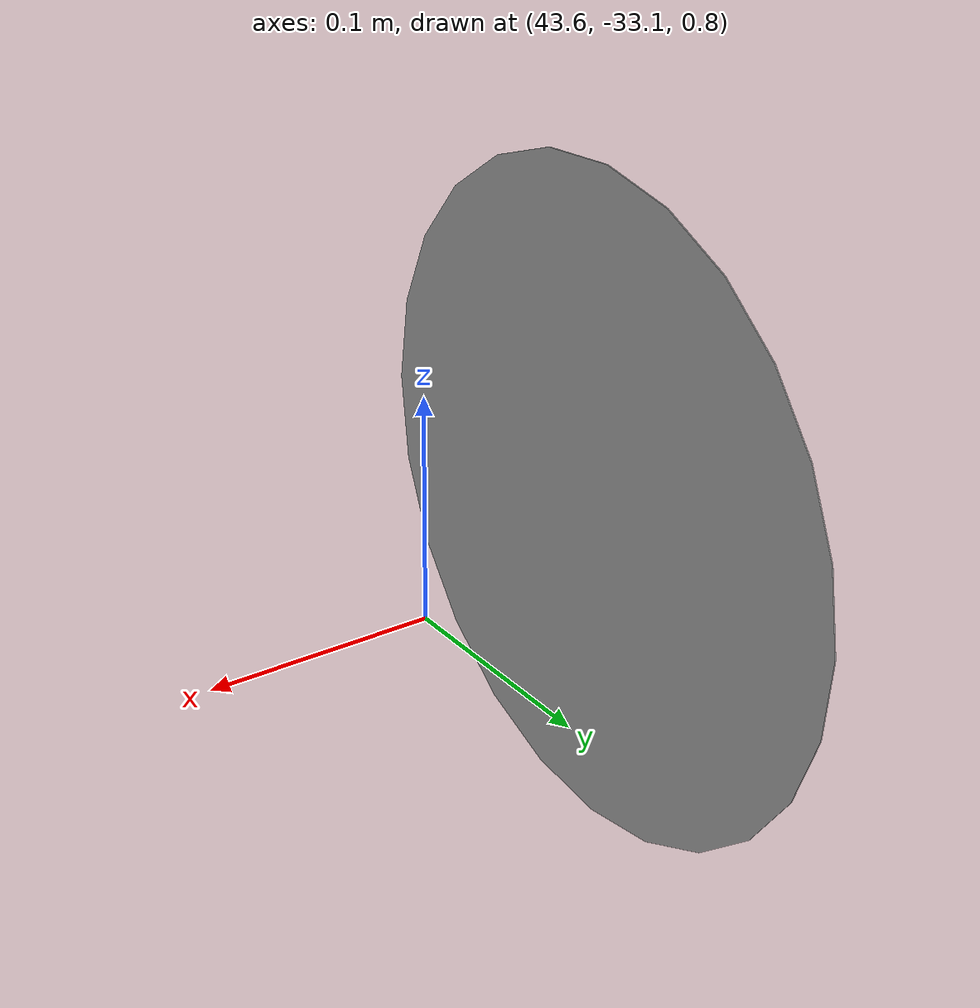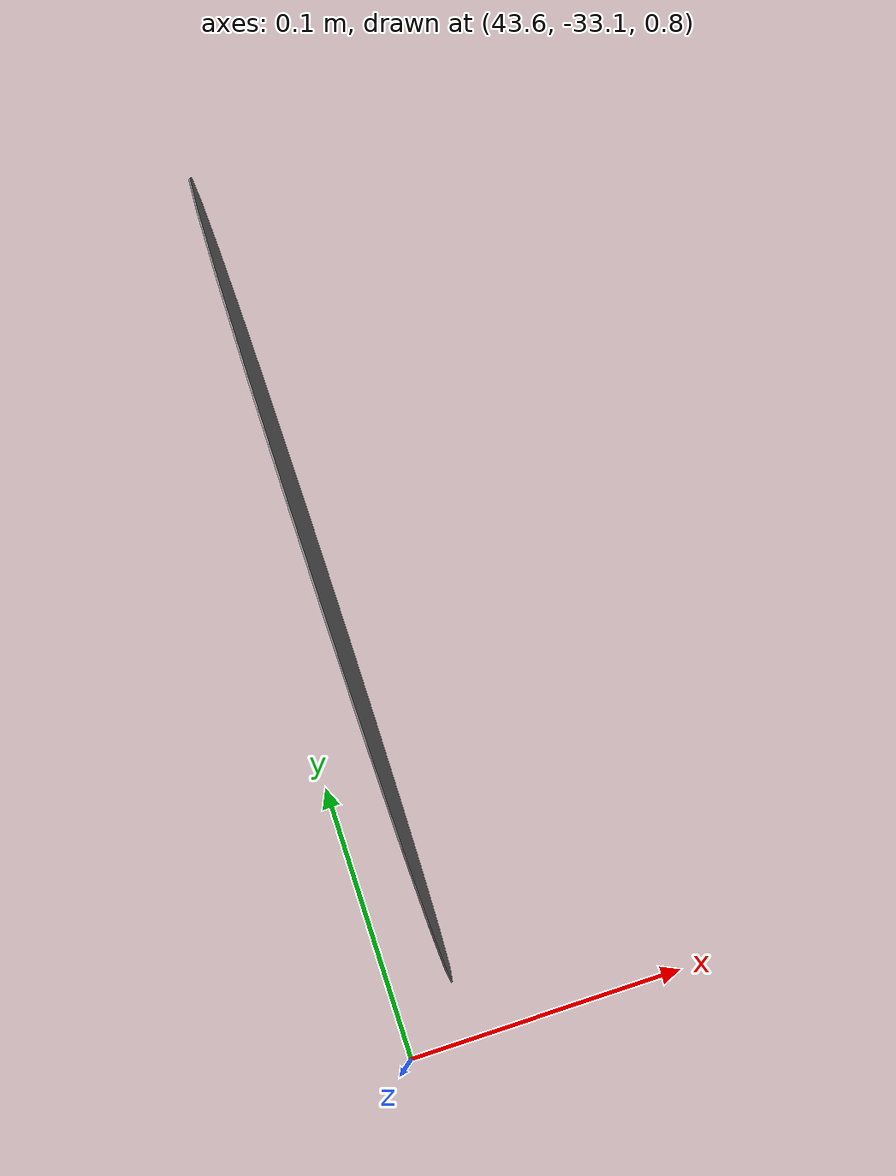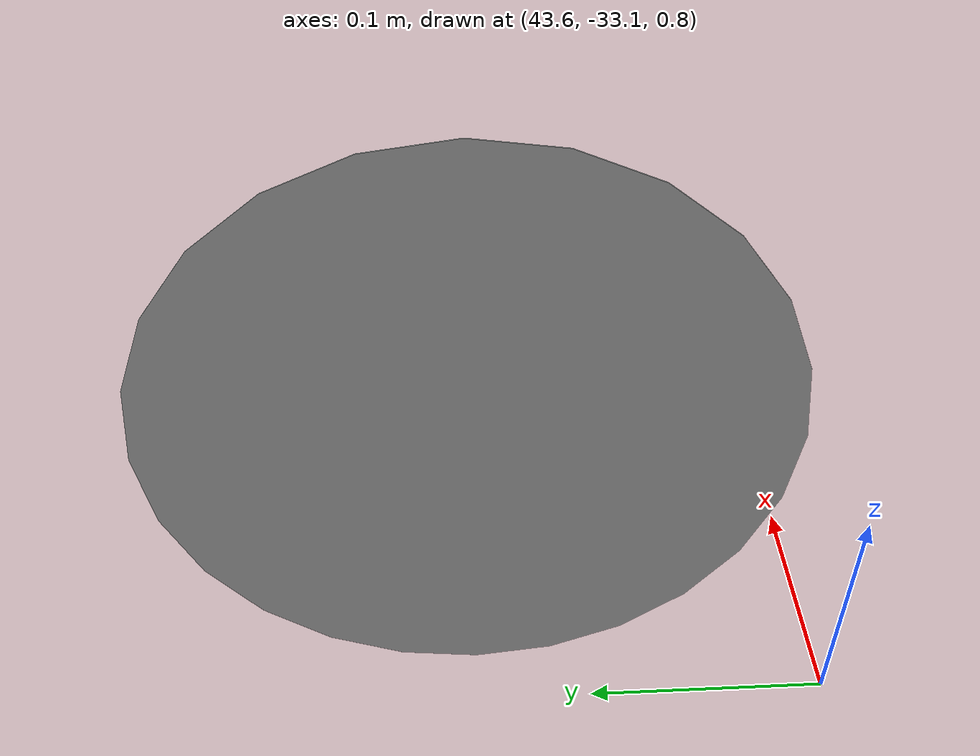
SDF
<sdf version="1.7">
 <world name="default">
  <model name="ground_plane">
   <static>1</static>
   <link name="link">
    <collision name="collision">
     <geometry><plane><normal>0 0 1</normal><size>100 100</size></plane></geometry>
     <surface>
      <contact><collide_bitmask>65535</collide_bitmask></contact>
      <friction><ode><mu>100</mu><mu2>50</mu2></ode></friction>
     </surface>
    </collision>
    <visual name="visual">
     <cast_shadows>0</cast_shadows>
     <geometry><plane><normal>0 0 1</normal><size>100 100</size></plane></geometry>
     <material>
      <script><uri>file://media/materials/scripts/gazebo.material</uri><name>Gazebo/DarkGrey</name></script>
     </material>
    </visual>
   </link>
  </model>
  <model name="sagadonulmezz">
   <link name="link">
    <inertial>
     <mass>0.00065094</mass>
     <inertia>
      <ixx>3.39e-06</ixx>
      <ixy>0</ixy>
      <ixz>0</ixz>
      <iyy>6.78e-06</iyy>
      <iyz>0</iyz>
      <izz>3.39e-06</izz>
     </inertia>
    </inertial>
    <gravity>0</gravity>
    <visual name="visual">
     <geometry><box><size>0.25 0.000344 0.25</size></box></geometry>
     <material>
      <script>
       <uri>model://sagadonulmezz/materials/scripts/repeated.material</uri>
       <uri>model://sagadonulmezz/materials/textures/sagadonulmez.png</uri>
       <name>RepeatedTexture24</name>
      </script>
      <shader type="pixel"><normal_map>__default__</normal_map></shader>
      <ambient>0 0 0 1</ambient>
      <diffuse>0.7 0.7 0.7 1</diffuse>
      <specular>0.01 0.01 0.01 1</specular>
      <emissive>0.694 0.694 0.694 1</emissive>
      <lighting>0</lighting>
     </material>
     <transparency>1</transparency>
    </visual>
    <collision name="collision">
     <geometry><box><size>0.25 5.3e-05 0.25</size></box></geometry>
     <surface>
      <friction>
       <ode><mu>1</mu><mu2>1</mu2><fdir1>0 0 0</fdir1><slip1>0</slip1><slip2>0</slip2></ode>
       <torsional>
        <coefficient>1</coefficient>
        <patch_radius>0</patch_radius>
        <surface_radius>0</surface_radius>
        <use_patch_radius>1</use_patch_radius>
        <ode><slip>0</slip></ode>
       </torsional>
      </friction>
      <bounce><restitution_coefficient>0</restitution_coefficient><threshold>1e+06</threshold></bounce>
      <contact>
       <collide_without_contact>0</collide_without_contact>
       <collide_without_contact_bitmask>1</collide_without_contact_bitmask>
       <collide_bitmask>1</collide_bitmask>
       <ode>
        <soft_cfm>0</soft_cfm>
        <soft_erp>0.2</soft_erp>
        <kp>1e+13</kp>
        <kd>1</kd>
        <max_vel>0.01</max_vel>
        <min_depth>0</min_depth>
       </ode>
       <bullet>
        <split_impulse>1</split_impulse>
        <split_impulse_penetration_threshold>-0.01</split_impulse_penetration_threshold>
        <soft_cfm>0</soft_cfm>
        <soft_erp>0.2</soft_erp>
        <kp>1e+13</kp>
        <kd>1</kd>
       </bullet>
      </contact>
     </surface>
    </collision>
   </link>
   <static>1</static>
   <pose>43.6177 -30.1961 0.925 0 0 -1.57552</pose>
  </model>
  <model name="soladonulmez_0">
   <link name="link">
    <inertial>
     <mass>0.0029489</mass>
     <inertia>
      <ixx>1.53589e-05</ixx>
      <ixy>0</ixy>
      <ixz>0</ixz>
      <iyy>3.07177e-05</iyy>
      <iyz>0</iyz>
      <izz>1.53589e-05</izz>
     </inertia>
    </inertial>
    <gravity>0</gravity>
    <visual name="visual">
     <geometry><box><size>0.25 1.3e-05 0.25</size></box></geometry>
     <material>
      <script>
       <uri>model://ornekkare/materials/scripts/repeated.material</uri>
       <uri>model://ornekkare/materials/textures/soladonulmezz.png</uri>
       <name>RepeatedTexture9</name>
      </script>
      <shader type="pixel"><normal_map>__default__</normal_map></shader>
      <ambient>0 0 0 1</ambient>
      <diffuse>0.7 0.7 0.7 1</diffuse>
      <specular>0.01 0.01 0.01 1</specular>
      <emissive>0.694 0.694 0.694 1</emissive>
      <lighting>0</lighting>
     </material>
     <transparency>1</transparency>
    </visual>
    <collision name="collision">
     <geometry><box><size>0.25 0.00011 0.25</size></box></geometry>
     <surface>
      <friction>
       <ode><mu>1</mu><mu2>1</mu2><fdir1>0 0 0</fdir1><slip1>0</slip1><slip2>0</slip2></ode>
       <torsional>
        <coefficient>1</coefficient>
        <patch_radius>0</patch_radius>
        <surface_radius>0</surface_radius>
        <use_patch_radius>1</use_patch_radius>
        <ode><slip>0</slip></ode>
       </torsional>
      </friction>
      <bounce><restitution_coefficient>0</restitution_coefficient><threshold>1e+06</threshold></bounce>
      <contact>
       <collide_without_contact>0</collide_without_contact>
       <collide_without_contact_bitmask>1</collide_without_contact_bitmask>
       <collide_bitmask>1</collide_bitmask>
       <ode>
        <soft_cfm>0</soft_cfm>
        <soft_erp>0.2</soft_erp>
        <kp>1e+13</kp>
        <kd>1</kd>
        <max_vel>0.01</max_vel>
        <min_depth>0</min_depth>
       </ode>
       <bullet>
        <split_impulse>1</split_impulse>
        <split_impulse_penetration_threshold>-0.01</split_impulse_penetration_threshold>
        <soft_cfm>0</soft_cfm>
        <soft_erp>0.2</soft_erp>
        <kp>1e+13</kp>
        <kd>1</kd>
       </bullet>
      </contact>
     </surface>
    </collision>
   </link>
   <static>1</static>
   <pose>43.6318 -32.9518 0.925 0 -0 1.5708</pose>
  </model>
  <model name="circle_clone_clone_1_clone_0_clone_clone">
   <link name="link">
    <inertial>
     <mass>1</mass>
     <inertia><ixx>0.145833</ixx><ixy>0</ixy><ixz>0</ixz><iyy>0.145833</iyy><iyz>0</iyz><izz>0.125</izz></inertia>
    </inertial>
    <visual name="visual">
     <geometry><cylinder><radius>0.126069</radius><length>0.000448721</length></cylinder></geometry>
     <material>
      <script><name>Gazebo/Grey</name><uri>file://media/materials/scripts/gazebo.material</uri></script>
      <shader type="pixel"/>
     </material>
    </visual>
    <collision name="collision">
     <geometry><cylinder><radius>0.126069</radius><length>0.000449</length></cylinder></geometry>
     <surface>
      <friction>
       <ode><mu>1</mu><mu2>1</mu2><fdir1>0 0 0</fdir1><slip1>0</slip1><slip2>0</slip2></ode>
       <torsional>
        <coefficient>1</coefficient>
        <patch_radius>0</patch_radius>
        <surface_radius>0</surface_radius>
        <use_patch_radius>1</use_patch_radius>
        <ode><slip>0</slip></ode>
       </torsional>
      </friction>
      <bounce><restitution_coefficient>0</restitution_coefficient><threshold>1e+06</threshold></bounce>
      <contact>
       <collide_without_contact>0</collide_without_contact>
       <collide_without_contact_bitmask>1</collide_without_contact_bitmask>
       <collide_bitmask>1</collide_bitmask>
       <ode>
        <soft_cfm>0</soft_cfm>
        <soft_erp>0.2</soft_erp>
        <kp>1e+13</kp>
        <kd>1</kd>
        <max_vel>0.01</max_vel>
        <min_depth>0</min_depth>
       </ode>
       <bullet>
        <split_impulse>1</split_impulse>
        <split_impulse_penetration_threshold>-0.01</split_impulse_penetration_threshold>
        <soft_cfm>0</soft_cfm>
        <soft_erp>0.2</soft_erp>
        <kp>1e+13</kp>
        <kd>1</kd>
       </bullet>
      </contact>
     </surface>
    </collision>
   </link>
   <static>1</static>
   <pose>43.6243 -32.9516 0.924905 1.5708 -3e-06 1.5708</pose>
  </model>
 </world>
</sdf>
